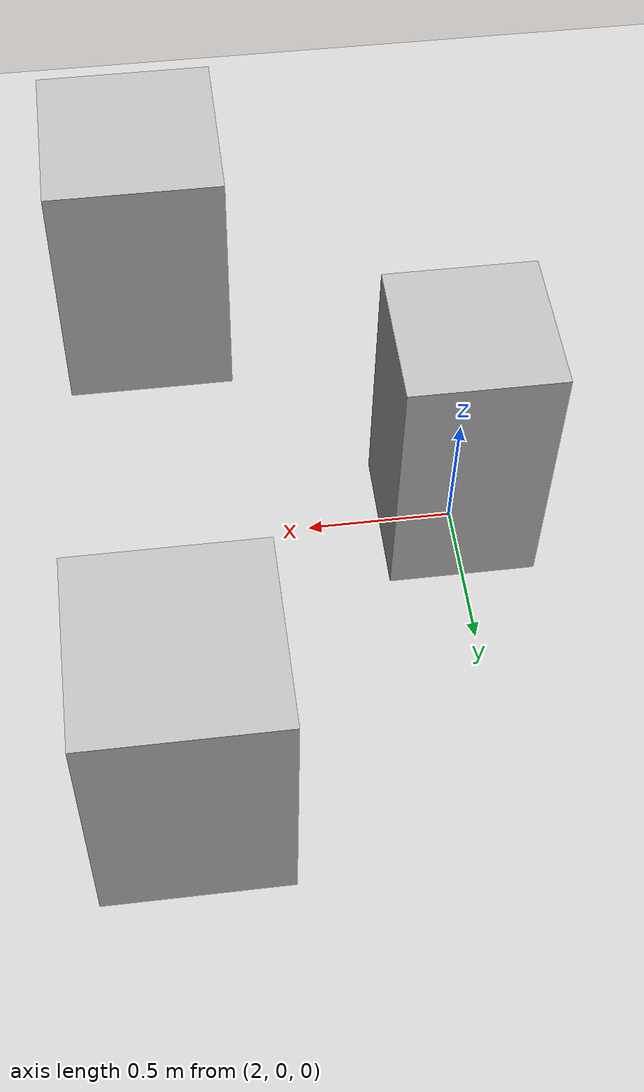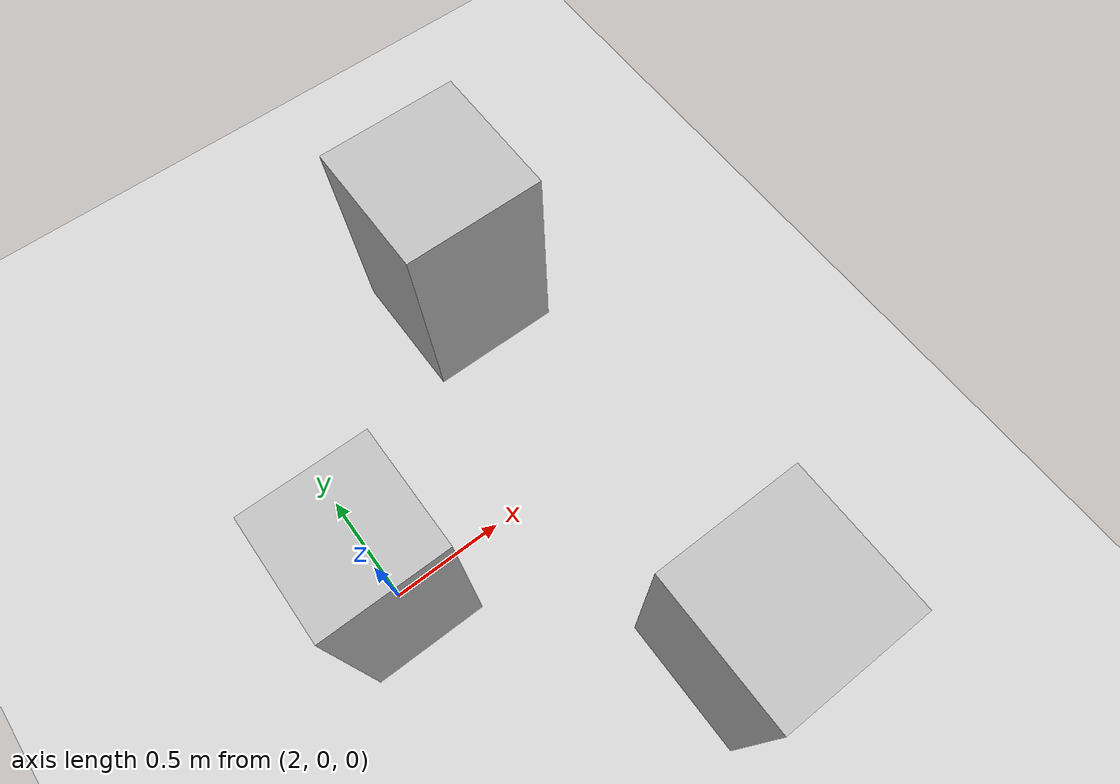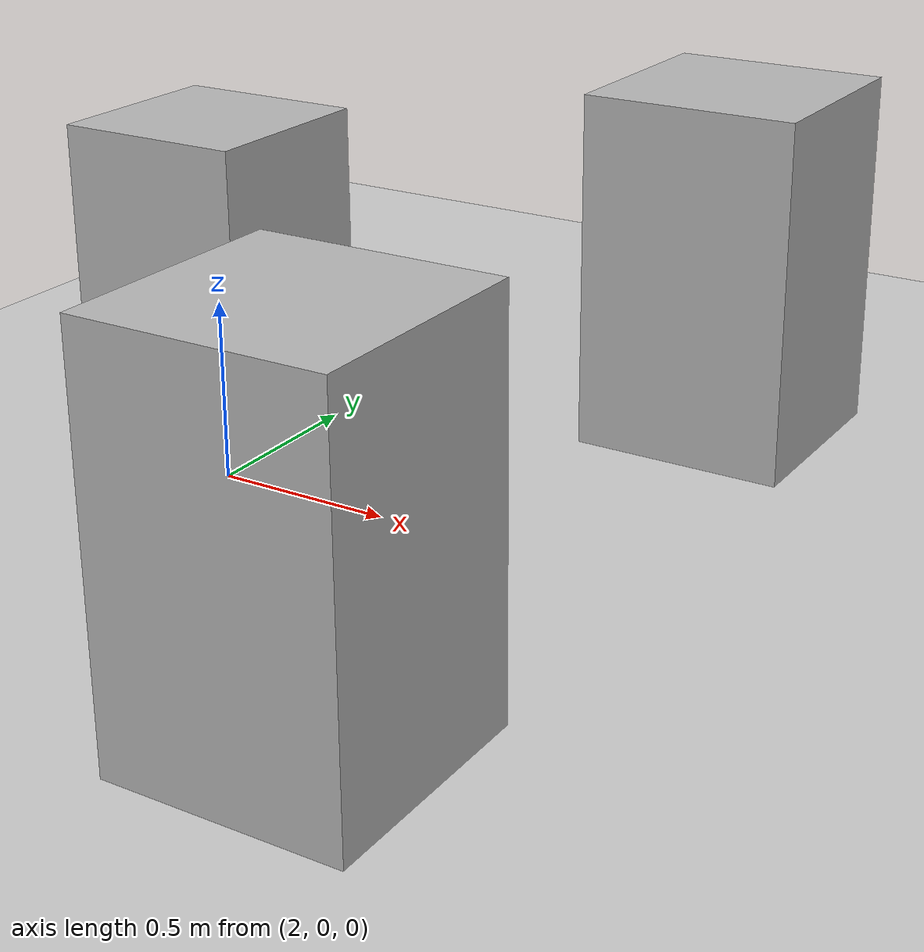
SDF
<?xml version="1.0" ?>
<sdf version="1.6">
  <world name="default">

    <!-- 光照 -->
    <include>
      <uri>model://sun</uri>
    </include>

    <!-- 地面 -->
    <include>
      <uri>model://ground_plane</uri>
    </include>

    <!-- 障碍物1 -->
    <model name="box1">
      <static>true</static>
      <pose>2 0 0.5 0 0 0</pose>
      <link name="link">
        <collision name="collision">
          <geometry>
            <box>
              <size>0.5 0.5 1.0</size>
            </box>
          </geometry>
        </collision>
        <visual name="visual">
          <geometry>
            <box>
              <size>0.5 0.5 1.0</size>
            </box>
          </geometry>
        </visual>
      </link>
    </model>

    <!-- 障碍物2 -->
    <model name="box2">
      <static>true</static>
      <pose>3 1 0.5 0 0 0</pose>
      <link name="link">
        <collision name="collision">
          <geometry>
            <box>
              <size>0.6 0.6 1.0</size>
            </box>
          </geometry>
        </collision>
        <visual name="visual">
          <geometry>
            <box>
              <size>0.6 0.6 1.0</size>
            </box>
          </geometry>
        </visual>
      </link>
    </model>

    <!-- 障碍物3 -->
    <model name="box3">
      <static>true</static>
      <pose>3 -1 0.5 0 0 0</pose>
      <link name="link">
        <collision name="collision">
          <geometry>
            <box>
              <size>0.6 0.6 1.0</size>
            </box>
          </geometry>
        </collision>
        <visual name="visual">
          <geometry>
            <box>
              <size>0.6 0.6 1.0</size>
            </box>
          </geometry>
        </visual>
      </link>
    </model>

  </world>
</sdf>
